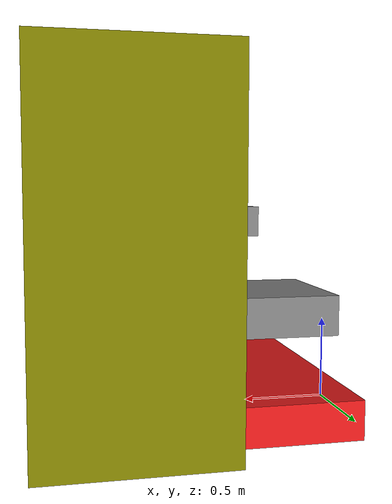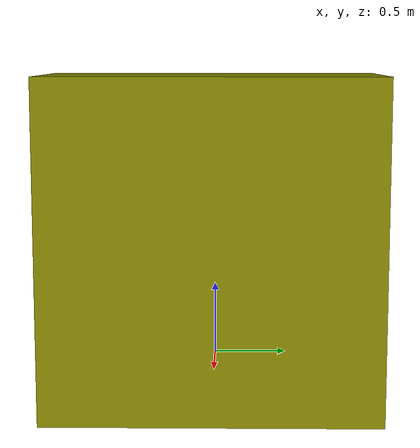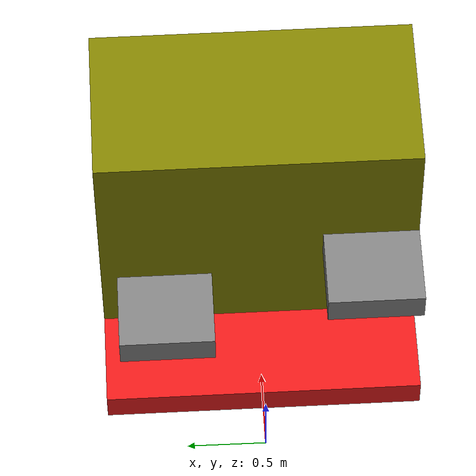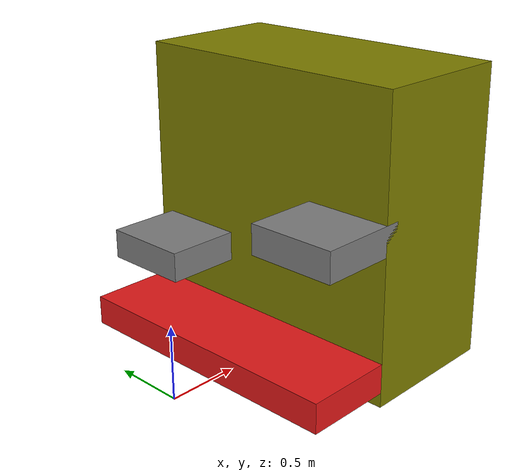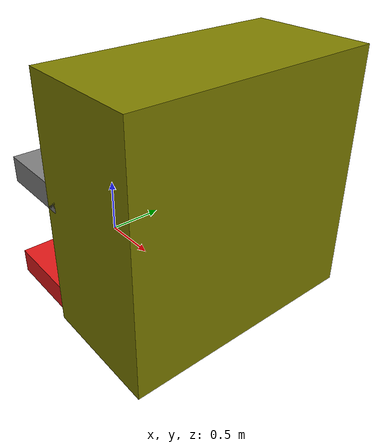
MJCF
<mujoco model="climbing_wall">
  <worldbody>
    <body name="climbing_wall" pos="1.3 0 1." quat="1 0 0 0" >
      <geom name="base" type="box" pos="0 0 0" size=".5 1. 1." mass="3." material="wall_mat"/>
      <body name="holds" pos="-0.8 0 0" quat="1 0 0 0">
        <geom name="hold_1" type="box" pos="0 0. -.8" size=".3 1. .1" mass="1."  material="hold_mat"/>
        <geom name="hold_2" type="box" pos="0.1 0.6 -.3" size=".3 .3 .1" mass="1."/>
        <geom name="hold_3" type="box" pos="0.1 -0.7 0.1" size=".3 .3 .1" mass="1."/>
      </body>
    </body>
  </worldbody>

  <asset>
    <material name="wall_mat" rgba="0.5 0.5 0.0 1"/>
    <material name="hold_mat" rgba="0.9 0.1 0.1 1"/>
  </asset>
</mujoco>
